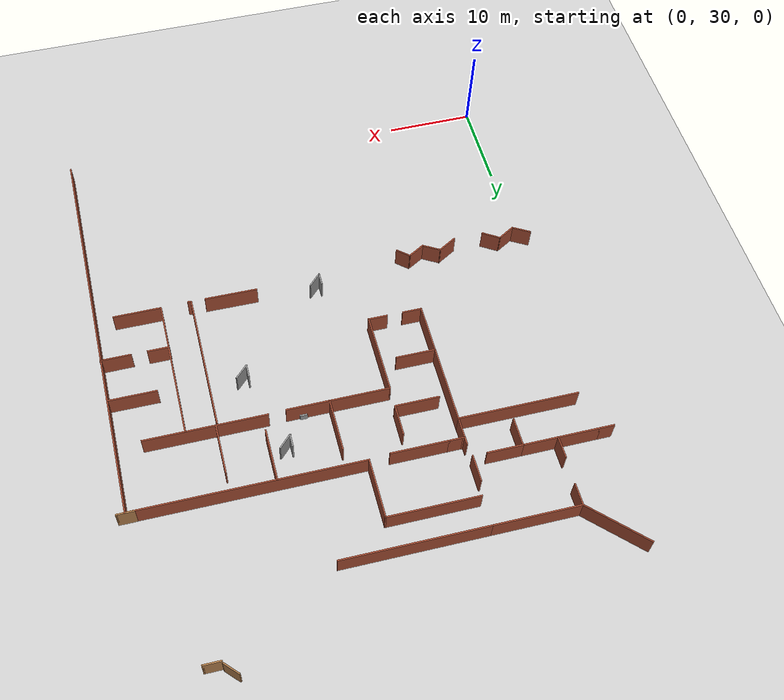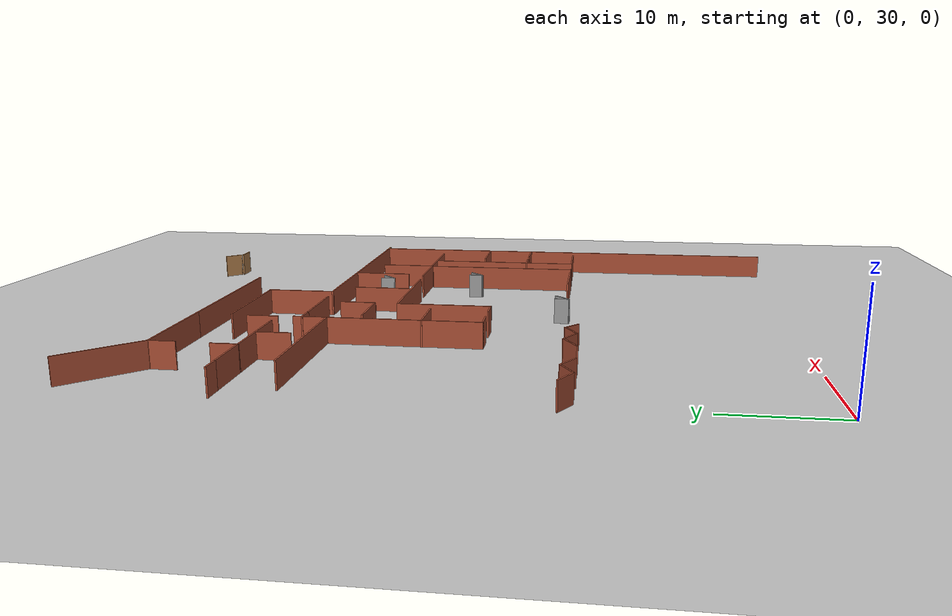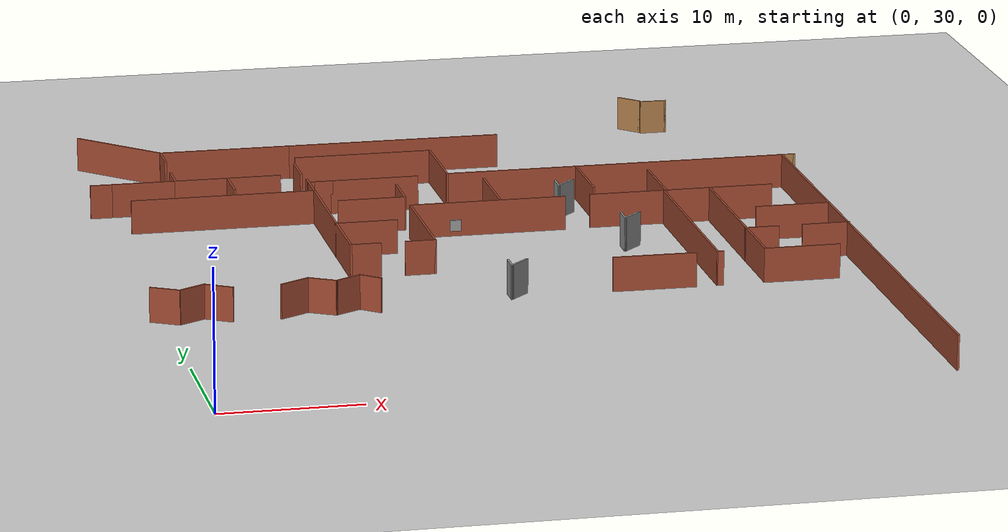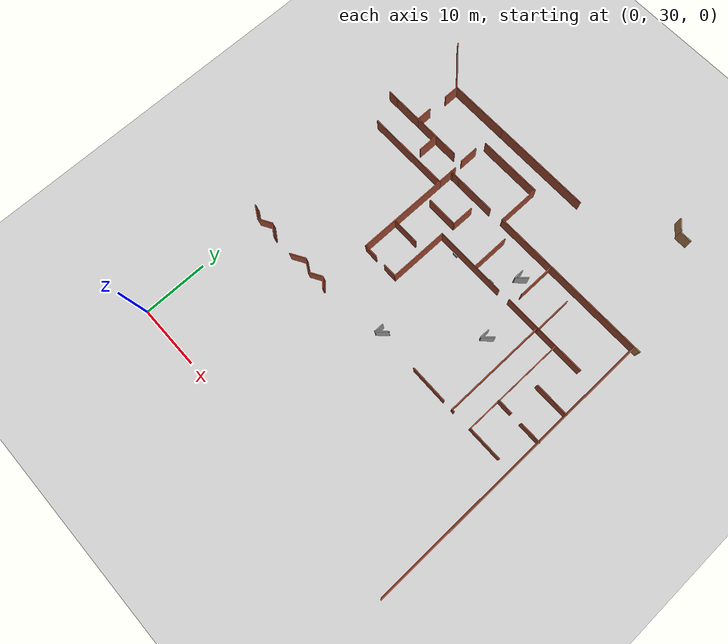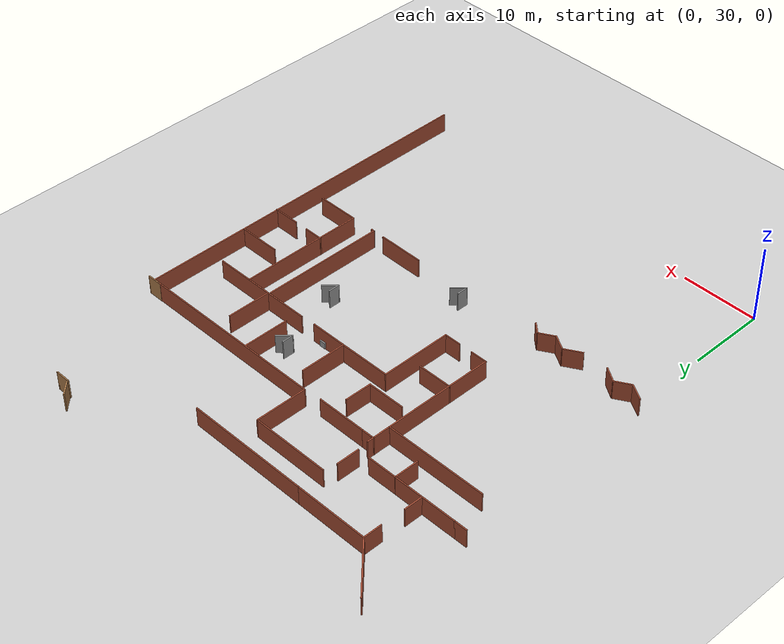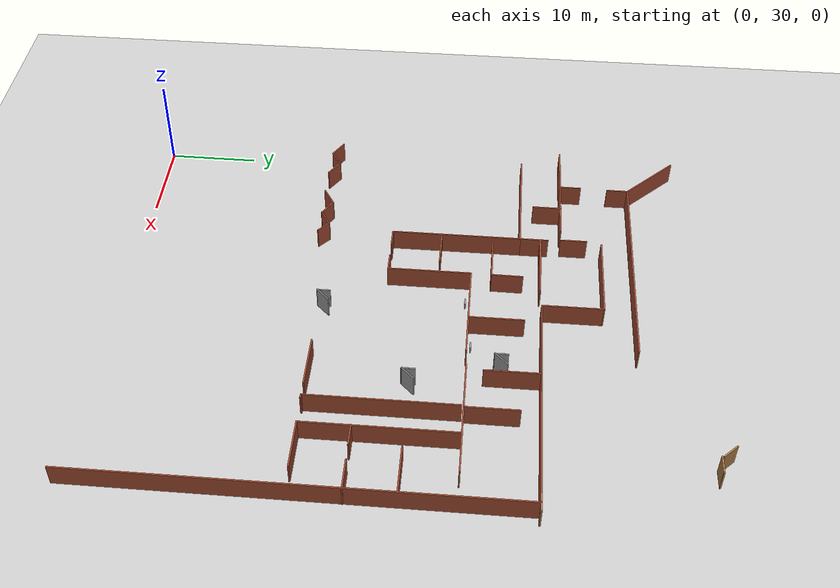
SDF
<sdf version="1.6">
 <world name="default">
  <model name="maze_rect_3">
   <pose>4e-06 -9.9e-05 0 0 -0 1.57001</pose>
   <link name="Wall_131">
    <collision name="Wall_131_Collision">
     <geometry><box><size>2.25 0.15 2.5</size></box></geometry>
     <pose>0 0 1.25 0 -0 0</pose>
    </collision>
    <visual name="Wall_131_Visual">
     <pose>0 0 1.25 0 -0 0</pose>
     <geometry><box><size>2.25 0.15 2.5</size></box></geometry>
     <material>
      <script><uri>file://media/materials/scripts/gazebo.material</uri><name>Gazebo/Bricks</name></script>
      <ambient>1 1 1 1</ambient>
     </material>
     <meta><layer>0</layer></meta>
    </visual>
    <pose>50.6727 0.113126 0 0 -0 -2.0944</pose>
   </link>
   <link name="Wall_132">
    <collision name="Wall_132_Collision">
     <geometry><box><size>2.25 0.15 2.5</size></box></geometry>
     <pose>0 0 1.25 0 -0 0</pose>
    </collision>
    <visual name="Wall_132_Visual">
     <pose>0 0 1.25 0 -0 0</pose>
     <geometry><box><size>2.25 0.15 2.5</size></box></geometry>
     <material>
      <script><uri>file://media/materials/scripts/gazebo.material</uri><name>Gazebo/Bricks</name></script>
      <ambient>1 1 1 1</ambient>
     </material>
     <meta><layer>0</layer></meta>
    </visual>
    <pose>50.6727 -1.79753 0 0 -0 -1.0472</pose>
   </link>
   <link name="Wall_133">
    <collision name="Wall_133_Collision">
     <geometry><box><size>2.2447 0.15 2.5</size></box></geometry>
     <pose>0 0 1.25 0 -0 0</pose>
    </collision>
    <visual name="Wall_133_Visual">
     <pose>0 0 1.25 0 -0 0</pose>
     <geometry><box><size>2.2447 0.15 2.5</size></box></geometry>
     <material>
      <script><uri>file://media/materials/scripts/gazebo.material</uri><name>Gazebo/Bricks</name></script>
      <ambient>1 1 1 1</ambient>
     </material>
     <meta><layer>0</layer></meta>
    </visual>
    <pose>50.6397 -3.59318 0 0 -0 -2.13267</pose>
   </link>
   <link name="Wall_136">
    <collision name="Wall_136_Collision">
     <geometry><box><size>2.5 0.15 2.5</size></box></geometry>
     <pose>0 0 1.25 0 -0 0</pose>
    </collision>
    <visual name="Wall_136_Visual">
     <pose>0 0 1.25 0 -0 0</pose>
     <geometry><box><size>2.5 0.15 2.5</size></box></geometry>
     <material>
      <script><uri>file://media/materials/scripts/gazebo.material</uri><name>Gazebo/Bricks</name></script>
      <ambient>1 1 1 1</ambient>
     </material>
     <meta><layer>0</layer></meta>
    </visual>
    <pose>50.6692 -8.93138 0 0 -0 -1.0472</pose>
   </link>
   <link name="Wall_137">
    <collision name="Wall_137_Collision">
     <geometry><box><size>2.25 0.15 2.5</size></box></geometry>
     <pose>0 0 1.25 0 -0 0</pose>
    </collision>
    <visual name="Wall_137_Visual">
     <pose>0 0 1.25 0 -0 0</pose>
     <geometry><box><size>2.25 0.15 2.5</size></box></geometry>
     <material>
      <script><uri>file://media/materials/scripts/gazebo.material</uri><name>Gazebo/Bricks</name></script>
      <ambient>1 1 1 1</ambient>
     </material>
     <meta><layer>0</layer></meta>
    </visual>
    <pose>50.7317 -10.8583 0 0 -0 -2.0944</pose>
   </link>
   <link name="Wall_138">
    <collision name="Wall_138_Collision">
     <geometry><box><size>2.25 0.15 2.5</size></box></geometry>
     <pose>0 0 1.25 0 -0 0</pose>
    </collision>
    <visual name="Wall_138_Visual">
     <pose>0 0 1.25 0 -0 0</pose>
     <geometry><box><size>2.25 0.15 2.5</size></box></geometry>
     <material>
      <script><uri>file://media/materials/scripts/gazebo.material</uri><name>Gazebo/Bricks</name></script>
      <ambient>1 1 1 1</ambient>
     </material>
     <meta><layer>0</layer></meta>
    </visual>
    <pose>50.7317 -12.6769 0 0 -0 -1.0472</pose>
   </link>
   <link name="Wall_139">
    <collision name="Wall_139_Collision">
     <geometry><box><size>1.81998 0.15 2.5</size></box></geometry>
     <pose>0 0 1.25 0 -0 0</pose>
    </collision>
    <visual name="Wall_139_Visual">
     <pose>0 0 1.25 0 -0 0</pose>
     <geometry><box><size>1.81998 0.15 2.5</size></box></geometry>
     <material>
      <script><uri>file://media/materials/scripts/gazebo.material</uri><name>Gazebo/Bricks</name></script>
      <ambient>1 1 1 1</ambient>
     </material>
     <meta><layer>0</layer></meta>
    </visual>
    <pose>50.7099 -14.2173 0 0 -0 -2.28481</pose>
   </link>
   <static>1</static>
  </model>
  <model name="map_palace_v2_model_1">
   <pose>0 60 0 0 -0 0</pose>
   <link name="Wall_208">
    <collision name="Wall_208_Collision">
     <geometry><box><size>1.75 0.15 2.5</size></box></geometry>
     <pose>0 0 1.25 0 -0 0</pose>
    </collision>
    <visual name="Wall_208_Visual">
     <pose>0 0 1.25 0 -0 0</pose>
     <geometry><box><size>1.75 0.15 2.5</size></box></geometry>
     <material>
      <script><uri>file://media/materials/scripts/gazebo.material</uri><name>Gazebo/Bricks</name></script>
      <ambient>1 1 1 1</ambient>
     </material>
     <meta><layer>0</layer></meta>
    </visual>
    <pose>-0.488058 17.5809 0 0 -0 0</pose>
   </link>
   <link name="Wall_209">
    <collision name="Wall_209_Collision">
     <geometry><box><size>4.75 0.15 2.5</size></box></geometry>
     <pose>0 0 1.25 0 -0 0</pose>
    </collision>
    <visual name="Wall_209_Visual">
     <pose>0 0 1.25 0 -0 0</pose>
     <geometry><box><size>4.75 0.15 2.5</size></box></geometry>
     <material>
      <script><uri>file://media/materials/scripts/gazebo.material</uri><name>Gazebo/Bricks</name></script>
      <ambient>1 1 1 1</ambient>
     </material>
     <meta><layer>0</layer></meta>
    </visual>
    <pose>2.61194 17.5809 0 0 -0 0</pose>
   </link>
   <link name="Wall_210">
    <collision name="Wall_210_Collision">
     <geometry><box><size>2.5 0.15 2.5</size></box></geometry>
     <pose>0 0 1.25 0 -0 0</pose>
    </collision>
    <visual name="Wall_210_Visual">
     <pose>0 0 1.25 0 -0 0</pose>
     <geometry><box><size>2.5 0.15 2.5</size></box></geometry>
     <material>
      <script><uri>file://media/materials/scripts/gazebo.material</uri><name>Gazebo/Bricks</name></script>
      <ambient>1 1 1 1</ambient>
     </material>
     <meta><layer>0</layer></meta>
    </visual>
    <pose>4.91194 18.7559 0 0 -0 1.5708</pose>
   </link>
   <link name="Wall_212">
    <collision name="Wall_212_Collision">
     <geometry><box><size>4 0.15 2.5</size></box></geometry>
     <pose>0 0 1.25 0 -0 0</pose>
    </collision>
    <visual name="Wall_212_Visual">
     <pose>0 0 1.25 0 -0 0</pose>
     <geometry><box><size>4 0.15 2.5</size></box></geometry>
     <material>
      <script><uri>file://media/materials/scripts/gazebo.material</uri><name>Gazebo/Bricks</name></script>
      <ambient>1 1 1 1</ambient>
     </material>
     <meta><layer>0</layer></meta>
    </visual>
    <pose>6.83694 17.5809 0 0 -0 0</pose>
   </link>
   <link name="Wall_213">
    <collision name="Wall_213_Collision">
     <geometry><box><size>3.25 0.15 2.5</size></box></geometry>
     <pose>0 0 1.25 0 -0 0</pose>
    </collision>
    <visual name="Wall_213_Visual">
     <pose>0 0 1.25 0 -0 0</pose>
     <geometry><box><size>3.25 0.15 2.5</size></box></geometry>
     <material>
      <script><uri>file://media/materials/scripts/gazebo.material</uri><name>Gazebo/Bricks</name></script>
      <ambient>1 1 1 1</ambient>
     </material>
     <meta><layer>0</layer></meta>
    </visual>
    <pose>8.76194 16.0309 0 0 -0 -1.5708</pose>
   </link>
   <link name="Wall_215">
    <collision name="Wall_215_Collision">
     <geometry><box><size>4 0.15 2.5</size></box></geometry>
     <pose>0 0 1.25 0 -0 0</pose>
    </collision>
    <visual name="Wall_215_Visual">
     <pose>0 0 1.25 0 -0 0</pose>
     <geometry><box><size>4 0.15 2.5</size></box></geometry>
     <material>
      <script><uri>file://media/materials/scripts/gazebo.material</uri><name>Gazebo/Bricks</name></script>
      <ambient>1 1 1 1</ambient>
     </material>
     <meta><layer>0</layer></meta>
    </visual>
    <pose>10.6869 17.5809 0 0 -0 0</pose>
   </link>
   <link name="Wall_217">
    <collision name="Wall_217_Collision">
     <geometry><box><size>3 0.15 2.5</size></box></geometry>
     <pose>0 0 1.25 0 -0 0</pose>
    </collision>
    <visual name="Wall_217_Visual">
     <pose>0 0 1.25 0 -0 0</pose>
     <geometry><box><size>3 0.15 2.5</size></box></geometry>
     <material>
      <script><uri>file://media/materials/scripts/gazebo.material</uri><name>Gazebo/Bricks</name></script>
      <ambient>1 1 1 1</ambient>
     </material>
     <meta><layer>0</layer></meta>
    </visual>
    <pose>14.2119 19.0059 0 0 -0 1.5708</pose>
   </link>
   <link name="Wall_221">
    <collision name="Wall_221_Collision">
     <geometry><box><size>3.25 0.15 2.5</size></box></geometry>
     <pose>0 0 1.25 0 -0 0</pose>
    </collision>
    <visual name="Wall_221_Visual">
     <pose>0 0 1.25 0 -0 0</pose>
     <geometry><box><size>3.25 0.15 2.5</size></box></geometry>
     <material>
      <script><uri>file://media/materials/scripts/gazebo.material</uri><name>Gazebo/Bricks</name></script>
      <ambient>1 1 1 1</ambient>
     </material>
     <meta><layer>0</layer></meta>
    </visual>
    <pose>14.3807 14.5475 0 0 -0 1.5708</pose>
   </link>
   <link name="Wall_223">
    <collision name="Wall_223_Collision">
     <geometry><box><size>0.5 0.15 2.5</size></box></geometry>
     <pose>0 0 1.25 0 -0 0</pose>
    </collision>
    <visual name="Wall_223_Visual">
     <pose>0 0 1.25 0 -0 0</pose>
     <geometry><box><size>0.5 0.15 2.5</size></box></geometry>
     <material>
      <script><uri>file://media/materials/scripts/gazebo.material</uri><name>Gazebo/Bricks</name></script>
      <ambient>1 1 1 1</ambient>
     </material>
     <meta><layer>0</layer></meta>
    </visual>
    <pose>14.5415 15.308 0 0 -0 0</pose>
   </link>
   <link name="Wall_224">
    <collision name="Wall_224_Collision">
     <geometry><box><size>1.5 0.15 2.5</size></box></geometry>
     <pose>0 0 1.25 0 -0 0</pose>
    </collision>
    <visual name="Wall_224_Visual">
     <pose>0 0 1.25 0 -0 0</pose>
     <geometry><box><size>1.5 0.15 2.5</size></box></geometry>
     <material>
      <script><uri>file://media/materials/scripts/gazebo.material</uri><name>Gazebo/Bricks</name></script>
      <ambient>1 1 1 1</ambient>
     </material>
     <meta><layer>0</layer></meta>
    </visual>
    <pose>15.3915 15.308 0 0 -0 0</pose>
   </link>
   <link name="Wall_225">
    <collision name="Wall_225_Collision">
     <geometry><box><size>6.5 0.15 2.5</size></box></geometry>
     <pose>0 0 1.25 0 -0 0</pose>
    </collision>
    <visual name="Wall_225_Visual">
     <pose>0 0 1.25 0 -0 0</pose>
     <geometry><box><size>6.5 0.15 2.5</size></box></geometry>
     <material>
      <script><uri>file://media/materials/scripts/gazebo.material</uri><name>Gazebo/Bricks</name></script>
      <ambient>1 1 1 1</ambient>
     </material>
     <meta><layer>0</layer></meta>
    </visual>
    <pose>19.2415 15.308 0 0 -0 0</pose>
   </link>
   <link name="Wall_229">
    <collision name="Wall_229_Collision">
     <geometry><box><size>5 0.15 2.5</size></box></geometry>
     <pose>0 0 1.25 0 -0 0</pose>
    </collision>
    <visual name="Wall_229_Visual">
     <pose>0 0 1.25 0 -0 0</pose>
     <geometry><box><size>5 0.15 2.5</size></box></geometry>
     <material>
      <script><uri>file://media/materials/scripts/gazebo.material</uri><name>Gazebo/Bricks</name></script>
      <ambient>1 1 1 1</ambient>
     </material>
     <meta><layer>0</layer></meta>
    </visual>
    <pose>18.0475 9.99625 0 0 -0 3.14159</pose>
   </link>
   <link name="Wall_231">
    <collision name="Wall_231_Collision">
     <geometry><box><size>3.52576 0.15 2.5</size></box></geometry>
     <pose>0 0 1.25 0 -0 0</pose>
    </collision>
    <visual name="Wall_231_Visual">
     <pose>0 0 1.25 0 -0 0</pose>
     <geometry><box><size>3.52576 0.15 2.5</size></box></geometry>
     <material>
      <script><uri>file://media/materials/scripts/gazebo.material</uri><name>Gazebo/Bricks</name></script>
      <ambient>1 1 1 1</ambient>
     </material>
     <meta><layer>0</layer></meta>
    </visual>
    <pose>20.49 11.684 0 0 -0 -1.58116</pose>
   </link>
   <link name="Wall_235">
    <collision name="Wall_235_Collision">
     <geometry><box><size>4.5 0.15 2.5</size></box></geometry>
     <pose>0 0 1.25 0 -0 0</pose>
    </collision>
    <visual name="Wall_235_Visual">
     <pose>0 0 1.25 0 -0 0</pose>
     <geometry><box><size>4.5 0.15 2.5</size></box></geometry>
     <material>
      <script><uri>file://media/materials/scripts/gazebo.material</uri><name>Gazebo/Bricks</name></script>
      <ambient>1 1 1 1</ambient>
     </material>
     <meta><layer>0</layer></meta>
    </visual>
    <pose>16.5435 4.20704 0 0 -0 0</pose>
   </link>
   <link name="Wall_240">
    <collision name="Wall_240_Collision">
     <geometry><box><size>2.5 0.15 2.5</size></box></geometry>
     <pose>0 0 1.25 0 -0 0</pose>
    </collision>
    <visual name="Wall_240_Visual">
     <pose>0 0 1.25 0 -0 0</pose>
     <geometry><box><size>2.5 0.15 2.5</size></box></geometry>
     <material>
      <script><uri>file://media/materials/scripts/gazebo.material</uri><name>Gazebo/Bricks</name></script>
      <ambient>1 1 1 1</ambient>
     </material>
     <meta><layer>0</layer></meta>
    </visual>
    <pose>5.03069 24.2725 0 0 -0 -1.5708</pose>
   </link>
   <link name="Wall_244">
    <collision name="Wall_244_Collision">
     <geometry><box><size>6 0.15 2.5</size></box></geometry>
     <pose>0 0 1.25 0 -0 0</pose>
    </collision>
    <visual name="Wall_244_Visual">
     <pose>0 0 1.25 0 -0 0</pose>
     <geometry><box><size>6 0.15 2.5</size></box></geometry>
     <material>
      <script><uri>file://media/materials/scripts/gazebo.material</uri><name>Gazebo/Bricks</name></script>
      <ambient>1 1 1 1</ambient>
     </material>
     <meta><layer>0</layer></meta>
    </visual>
    <pose>27.0679 10.7157 0 0 -0 1.5708</pose>
   </link>
   <link name="Wall_246">
    <collision name="Wall_246_Collision">
     <geometry><box><size>6 0.15 2.5</size></box></geometry>
     <pose>0 0 1.25 0 -0 0</pose>
    </collision>
    <visual name="Wall_246_Visual">
     <pose>0 0 1.25 0 -0 0</pose>
     <geometry><box><size>6 0.15 2.5</size></box></geometry>
     <material>
      <script><uri>file://media/materials/scripts/gazebo.material</uri><name>Gazebo/Bricks</name></script>
      <ambient>1 1 1 1</ambient>
     </material>
     <meta><layer>0</layer></meta>
    </visual>
    <pose>34.4057 12.5718 0 0 -0 -1.5708</pose>
   </link>
   <link name="Wall_249">
    <collision name="Wall_249_Collision">
     <geometry><box><size>5.75 0.15 2.5</size></box></geometry>
     <pose>0 0 1.25 0 -0 0</pose>
    </collision>
    <visual name="Wall_249_Visual">
     <pose>0 0 1.25 0 -0 0</pose>
     <geometry><box><size>5.75 0.15 2.5</size></box></geometry>
     <material>
      <script><uri>file://media/materials/scripts/gazebo.material</uri><name>Gazebo/Bricks</name></script>
      <ambient>1 1 1 1</ambient>
     </material>
     <meta><layer>0</layer></meta>
    </visual>
    <pose>39.3766 10.6453 0 0 -0 -1.5708</pose>
   </link>
   <link name="Wall_25">
    <collision name="Wall_25_Collision">
     <geometry><box><size>13.5 0.15 2.5</size></box></geometry>
     <pose>0 0 1.25 0 -0 0</pose>
    </collision>
    <visual name="Wall_25_Visual">
     <pose>0 0 1.25 0 -0 0</pose>
     <geometry><box><size>13.5 0.15 2.5</size></box></geometry>
     <material>
      <script><uri>file://media/materials/scripts/gazebo.material</uri><name>Gazebo/Bricks</name></script>
      <ambient>1 1 1 1</ambient>
     </material>
     <meta><layer>0</layer></meta>
    </visual>
    <pose>7.70569 12.9975 0 0 -0 0</pose>
   </link>
   <link name="Wall_250">
    <collision name="Wall_250_Collision">
     <geometry><box><size>5.75 0.15 2.5</size></box></geometry>
     <pose>0 0 1.25 0 -0 0</pose>
    </collision>
    <visual name="Wall_250_Visual">
     <pose>0 0 1.25 0 -0 0</pose>
     <geometry><box><size>5.75 0.15 2.5</size></box></geometry>
     <material>
      <script><uri>file://media/materials/scripts/gazebo.material</uri><name>Gazebo/Bricks</name></script>
      <ambient>1 1 1 1</ambient>
     </material>
     <meta><layer>0</layer></meta>
    </visual>
    <pose>36.5766 7.84533 0 0 -0 3.14159</pose>
   </link>
   <link name="Wall_252">
    <collision name="Wall_252_Collision">
     <geometry><box><size>8 0.15 2.5</size></box></geometry>
     <pose>0 0 1.25 0 -0 0</pose>
    </collision>
    <visual name="Wall_252_Visual">
     <pose>0 0 1.25 0 -0 0</pose>
     <geometry><box><size>8 0.15 2.5</size></box></geometry>
     <material>
      <script><uri>file://media/materials/scripts/gazebo.material</uri><name>Gazebo/Bricks</name></script>
      <ambient>1 1 1 1</ambient>
     </material>
     <meta><layer>0</layer></meta>
    </visual>
    <pose>43.3016 7.84533 0 0 -0 0</pose>
   </link>
   <link name="Wall_254">
    <collision name="Wall_254_Collision">
     <geometry><box><size>16.25 0.15 2.5</size></box></geometry>
     <pose>0 0 1.25 0 -0 0</pose>
    </collision>
    <visual name="Wall_254_Visual">
     <pose>0 0 1.25 0 -0 0</pose>
     <geometry><box><size>16.25 0.15 2.5</size></box></geometry>
     <material>
      <script><uri>file://media/materials/scripts/gazebo.material</uri><name>Gazebo/Bricks</name></script>
      <ambient>1 1 1 1</ambient>
     </material>
     <meta><layer>0</layer></meta>
    </visual>
    <pose>42.6348 -0.208459 0 0 -0 -1.5708</pose>
   </link>
   <link name="Wall_256">
    <collision name="Wall_256_Collision">
     <geometry><box><size>16.0526 0.15 2.5</size></box></geometry>
     <pose>0 0 1.25 0 -0 0</pose>
    </collision>
    <visual name="Wall_256_Visual">
     <pose>0 0 1.25 0 -0 0</pose>
     <geometry><box><size>16.0526 0.15 2.5</size></box></geometry>
     <material>
      <script><uri>file://media/materials/scripts/gazebo.material</uri><name>Gazebo/Bricks</name></script>
      <ambient>1 1 1 1</ambient>
     </material>
     <meta><layer>0</layer></meta>
    </visual>
    <pose>39.1948 -0.349759 0 0 -0 -1.5708</pose>
   </link>
   <link name="Wall_258">
    <collision name="Wall_258_Collision">
     <geometry><box><size>5.5 0.15 2.5</size></box></geometry>
     <pose>0 0 1.25 0 -0 0</pose>
    </collision>
    <visual name="Wall_258_Visual">
     <pose>0 0 1.25 0 -0 0</pose>
     <geometry><box><size>5.5 0.15 2.5</size></box></geometry>
     <material>
      <script><uri>file://media/materials/scripts/gazebo.material</uri><name>Gazebo/Bricks</name></script>
      <ambient>1 1 1 1</ambient>
     </material>
     <meta><layer>0</layer></meta>
    </visual>
    <pose>47.3998 2.24154 0 0 -0 3.14159</pose>
   </link>
   <link name="Wall_26">
    <collision name="Wall_26_Collision">
     <geometry><box><size>14.5 0.15 2.5</size></box></geometry>
     <pose>0 0 1.25 0 -0 0</pose>
    </collision>
    <visual name="Wall_26_Visual">
     <pose>0 0 1.25 0 -0 0</pose>
     <geometry><box><size>14.5 0.15 2.5</size></box></geometry>
     <material>
      <script><uri>file://media/materials/scripts/gazebo.material</uri><name>Gazebo/Bricks</name></script>
      <ambient>1 1 1 1</ambient>
     </material>
     <meta><layer>0</layer></meta>
    </visual>
    <pose>14.3807 5.82246 0 0 -0 -1.5708</pose>
   </link>
   <link name="Wall_264">
    <collision name="Wall_264_Collision">
     <geometry><box><size>2.5 0.15 2.5</size></box></geometry>
     <pose>0 0 1.25 0 -0 0</pose>
    </collision>
    <visual name="Wall_264_Visual">
     <pose>0 0 1.25 0 -0 0</pose>
     <geometry><box><size>2.5 0.15 2.5</size></box></geometry>
     <material>
      <script><uri>file://media/materials/scripts/gazebo.material</uri><name>Gazebo/Bricks</name></script>
      <ambient>1 1 1 1</ambient>
     </material>
     <meta><layer>0</layer></meta>
    </visual>
    <pose>43.7673 -2.92852 0 0 -0 0</pose>
   </link>
   <link name="Wall_266">
    <collision name="Wall_266_Collision">
     <geometry><box><size>3.5 0.15 2.5</size></box></geometry>
     <pose>0 0 1.25 0 -0 0</pose>
    </collision>
    <visual name="Wall_266_Visual">
     <pose>0 0 1.25 0 -0 0</pose>
     <geometry><box><size>3.5 0.15 2.5</size></box></geometry>
     <material>
      <script><uri>file://media/materials/scripts/gazebo.material</uri><name>Gazebo/Bricks</name></script>
      <ambient>1 1 1 1</ambient>
     </material>
     <meta><layer>0</layer></meta>
    </visual>
    <pose>48.4673 -2.92852 0 0 -0 0</pose>
   </link>
   <link name="Wall_27">
    <collision name="Wall_27_Collision">
     <geometry><box><size>2.25 0.15 2.5</size></box></geometry>
     <pose>0 0 1.25 0 -0 0</pose>
    </collision>
    <visual name="Wall_27_Visual">
     <pose>0 0 1.25 0 -0 0</pose>
     <geometry><box><size>2.25 0.15 2.5</size></box></geometry>
     <material>
      <script><uri>file://media/materials/scripts/gazebo.material</uri><name>Gazebo/Bricks</name></script>
      <ambient>1 1 1 1</ambient>
     </material>
     <meta><layer>0</layer></meta>
    </visual>
    <pose>15.4307 -1.35254 0 0 -0 0</pose>
   </link>
   <link name="Wall_29">
    <collision name="Wall_29_Collision">
     <geometry><box><size>2.25 0.15 2.5</size></box></geometry>
     <pose>0 0 1.25 0 -0 0</pose>
    </collision>
    <visual name="Wall_29_Visual">
     <pose>0 0 1.25 0 -0 0</pose>
     <geometry><box><size>2.25 0.15 2.5</size></box></geometry>
     <material>
      <script><uri>file://media/materials/scripts/gazebo.material</uri><name>Gazebo/Bricks</name></script>
      <ambient>1 1 1 1</ambient>
     </material>
     <meta><layer>0</layer></meta>
    </visual>
    <pose>19.3807 -1.35254 0 0 -0 0</pose>
   </link>
   <link name="Wall_296">
    <collision name="Wall_296_Collision">
     <geometry><box><size>0.513653 0.15 2.5</size></box></geometry>
     <pose>0 0 1.25 0 -0 0</pose>
    </collision>
    <visual name="Wall_296_Visual">
     <pose>0 0 1.25 0 -0 0</pose>
     <geometry><box><size>0.513653 0.15 2.5</size></box></geometry>
     <material>
      <script><uri>file://media/materials/scripts/gazebo.material</uri><name>Gazebo/Bricks</name></script>
      <ambient>1 1 1 1</ambient>
     </material>
     <meta><layer>0</layer></meta>
    </visual>
    <pose>39.3759 -8.31805 0 0 -0 3.04799</pose>
   </link>
   <link name="Wall_298">
    <collision name="Wall_298_Collision">
     <geometry><box><size>6 0.15 2.5</size></box></geometry>
     <pose>0 0 1.25 0 -0 0</pose>
    </collision>
    <visual name="Wall_298_Visual">
     <pose>0 0 1.25 0 -0 0</pose>
     <geometry><box><size>6 0.15 2.5</size></box></geometry>
     <material>
      <script><uri>file://media/materials/scripts/gazebo.material</uri><name>Gazebo/Bricks</name></script>
      <ambient>1 1 1 1</ambient>
     </material>
     <meta><layer>0</layer></meta>
    </visual>
    <pose>34.6698 -8.27476 0 0 -0 3.1326</pose>
   </link>
   <link name="Wall_30">
    <collision name="Wall_30_Collision">
     <geometry><box><size>9.25 0.15 2.5</size></box></geometry>
     <pose>0 0 1.25 0 -0 0</pose>
    </collision>
    <visual name="Wall_30_Visual">
     <pose>0 0 1.25 0 -0 0</pose>
     <geometry><box><size>9.25 0.15 2.5</size></box></geometry>
     <material>
      <script><uri>file://media/materials/scripts/gazebo.material</uri><name>Gazebo/Bricks</name></script>
      <ambient>1 1 1 1</ambient>
     </material>
     <meta><layer>0</layer></meta>
    </visual>
    <pose>20.4307 3.19746 0 0 -0 1.5708</pose>
   </link>
   <link name="Wall_31">
    <collision name="Wall_31_Collision">
     <geometry><box><size>11.5 0.15 2.5</size></box></geometry>
     <pose>0 0 1.25 0 -0 0</pose>
    </collision>
    <visual name="Wall_31_Visual">
     <pose>0 0 1.25 0 -0 0</pose>
     <geometry><box><size>11.5 0.15 2.5</size></box></geometry>
     <material>
      <script><uri>file://media/materials/scripts/gazebo.material</uri><name>Gazebo/Bricks</name></script>
      <ambient>1 1 1 1</ambient>
     </material>
     <meta><layer>0</layer></meta>
    </visual>
    <pose>26.1057 7.74746 0 0 -0 0</pose>
   </link>
   <link name="Wall_310">
    <collision name="Wall_310_Collision">
     <geometry><box><size>5.5 0.15 2.5</size></box></geometry>
     <pose>0 0 1.25 0 -0 0</pose>
    </collision>
    <visual name="Wall_310_Visual">
     <pose>0 0 1.25 0 -0 0</pose>
     <geometry><box><size>5.5 0.15 2.5</size></box></geometry>
     <material>
      <script><uri>file://media/materials/scripts/gazebo.material</uri><name>Gazebo/Bricks</name></script>
      <ambient>1 1 1 1</ambient>
     </material>
     <meta><layer>0</layer></meta>
    </visual>
    <pose>45.3098 -8.25846 0 0 -0 0</pose>
   </link>
   <link name="Wall_36">
    <collision name="Wall_36_Collision">
     <geometry><box><size>46.5 0.15 2.5</size></box></geometry>
     <pose>0 0 1.25 0 -0 0</pose>
    </collision>
    <visual name="Wall_36_Visual">
     <pose>0 0 1.25 0 -0 0</pose>
     <geometry><box><size>46.5 0.15 2.5</size></box></geometry>
     <material>
      <script><uri>file://media/materials/scripts/gazebo.material</uri><name>Gazebo/Bricks</name></script>
      <ambient>1 1 1 1</ambient>
     </material>
     <meta><layer>0</layer></meta>
    </visual>
    <pose>50.0807 -7.67754 0 0 -0 1.5708</pose>
   </link>
   <link name="Wall_37">
    <collision name="Wall_37_Collision">
     <geometry><box><size>25.5 0.15 2.5</size></box></geometry>
     <pose>0 0 1.25 0 -0 0</pose>
    </collision>
    <visual name="Wall_37_Visual">
     <pose>0 0 1.25 0 -0 0</pose>
     <geometry><box><size>25.5 0.15 2.5</size></box></geometry>
     <material>
      <script><uri>file://media/materials/scripts/gazebo.material</uri><name>Gazebo/Bricks</name></script>
      <ambient>1 1 1 1</ambient>
     </material>
     <meta><layer>0</layer></meta>
    </visual>
    <pose>37.4057 15.4975 0 0 -0 3.14159</pose>
   </link>
   <link name="Wall_38">
    <collision name="Wall_38_Collision">
     <geometry><box><size>6.75 0.15 2.5</size></box></geometry>
     <pose>0 0 1.25 0 -0 0</pose>
    </collision>
    <visual name="Wall_38_Visual">
     <pose>0 0 1.25 0 -0 0</pose>
     <geometry><box><size>6.75 0.15 2.5</size></box></geometry>
     <material>
      <script><uri>file://media/materials/scripts/gazebo.material</uri><name>Gazebo/Bricks</name></script>
      <ambient>1 1 1 1</ambient>
     </material>
     <meta><layer>0</layer></meta>
    </visual>
    <pose>24.7307 18.7975 0 0 -0 1.5708</pose>
   </link>
   <link name="Wall_39">
    <collision name="Wall_39_Collision">
     <geometry><box><size>10.25 0.15 2.5</size></box></geometry>
     <pose>0 0 1.25 0 -0 0</pose>
    </collision>
    <visual name="Wall_39_Visual">
     <pose>0 0 1.25 0 -0 0</pose>
     <geometry><box><size>10.25 0.15 2.5</size></box></geometry>
     <material>
      <script><uri>file://media/materials/scripts/gazebo.material</uri><name>Gazebo/Bricks</name></script>
      <ambient>1 1 1 1</ambient>
     </material>
     <meta><layer>0</layer></meta>
    </visual>
    <pose>19.6807 22.0975 0 0 -0 3.14159</pose>
   </link>
   <link name="Wall_41">
    <collision name="Wall_41_Collision">
     <geometry><box><size>9.75 0.15 2.5</size></box></geometry>
     <pose>0 0 1.25 0 -0 0</pose>
    </collision>
    <visual name="Wall_41_Visual">
     <pose>0 0 1.25 0 -0 0</pose>
     <geometry><box><size>9.75 0.15 2.5</size></box></geometry>
     <material>
      <script><uri>file://media/materials/scripts/gazebo.material</uri><name>Gazebo/Bricks</name></script>
      <ambient>1 1 1 1</ambient>
     </material>
     <meta><layer>0</layer></meta>
    </visual>
    <pose>9.83069 25.4475 0 0 -0 3.14159</pose>
   </link>
   <link name="Wall_42">
    <collision name="Wall_42_Collision">
     <geometry><box><size>7.75 0.15 2.5</size></box></geometry>
     <pose>0 0 1.25 0 -0 0</pose>
    </collision>
    <visual name="Wall_42_Visual">
     <pose>0 0 1.25 0 -0 0</pose>
     <geometry><box><size>7.75 0.15 2.5</size></box></geometry>
     <material>
      <script><uri>file://media/materials/scripts/gazebo.material</uri><name>Gazebo/Bricks</name></script>
      <ambient>1 1 1 1</ambient>
     </material>
     <meta><layer>0</layer></meta>
    </visual>
    <pose>2.34368 28.1345 0 0 -0 2.35619</pose>
   </link>
   <link name="Wall_47">
    <collision name="Wall_47_Collision">
     <geometry><box><size>16 0.15 2.5</size></box></geometry>
     <pose>0 0 1.25 0 -0 0</pose>
    </collision>
    <visual name="Wall_47_Visual">
     <pose>0 0 1.25 0 -0 0</pose>
     <geometry><box><size>16 0.15 2.5</size></box></geometry>
     <material>
      <script><uri>file://media/materials/scripts/gazebo.material</uri><name>Gazebo/Bricks</name></script>
      <ambient>1 1 1 1</ambient>
     </material>
     <meta><layer>0</layer></meta>
    </visual>
    <pose>22.5557 25.4475 0 0 -0 0</pose>
   </link>
   <link name="Window_8">
    <collision name="Window_8_Collision">
     <geometry><box><size>0.8 0.17 0.8</size></box></geometry>
     <pose>0 0 0.4 0 -0 0</pose>
    </collision>
    <visual name="Window_8_Visual">
     <pose>0 0 0.4 0 -0 0</pose>
     <geometry><box><size>0.8 0.17 0.8</size></box></geometry>
     <material>
      <script><uri>file://media/materials/scripts/gazebo.material</uri><name>Gazebo/Grey</name></script>
     </material>
    </visual>
    <pose>23.6652 7.30334 0.5 0 -0 0</pose>
   </link>
   <link name="Window_9">
    <collision name="Window_9_Collision">
     <geometry><box><size>0.8 0.17 0.8</size></box></geometry>
     <pose>0 0 0.4 0 -0 0</pose>
    </collision>
    <visual name="Window_9_Visual">
     <pose>0 0 0.4 0 -0 0</pose>
     <geometry><box><size>0.8 0.17 0.8</size></box></geometry>
     <material>
      <script><uri>file://media/materials/scripts/gazebo.material</uri><name>Gazebo/Grey</name></script>
     </material>
    </visual>
    <pose>30.0132 8.14974 0.5 0 -0 0</pose>
   </link>
   <static>1</static>
  </model>
  <model name="v_wall_2">
   <pose>35.4786 62.0034 0 0 -0 0</pose>
   <link name="Wall_3">
    <collision name="Wall_3_Collision">
     <geometry><box><size>2 0.15 2.5</size></box></geometry>
     <pose>0 0 1.25 0 -0 0</pose>
    </collision>
    <visual name="Wall_3_Visual">
     <pose>0 0 1.25 0 -0 0</pose>
     <geometry><box><size>2 0.15 2.5</size></box></geometry>
     <material>
      <script><uri>file://media/materials/scripts/gazebo.material</uri><name>Gazebo/Grey</name></script>
      <ambient>1 1 1 1</ambient>
     </material>
     <meta><layer>0</layer></meta>
    </visual>
    <pose>0 -0.005393 0 0 -0 0.785398</pose>
   </link>
   <link name="Wall_5">
    <collision name="Wall_5_Collision">
     <geometry><box><size>1.5 0.15 2.5</size></box></geometry>
     <pose>0 0 1.25 0 -0 0</pose>
    </collision>
    <visual name="Wall_5_Visual">
     <pose>0 0 1.25 0 -0 0</pose>
     <geometry><box><size>1.5 0.15 2.5</size></box></geometry>
     <material>
      <script><uri>file://media/materials/scripts/gazebo.material</uri><name>Gazebo/Grey</name></script>
      <ambient>1 1 1 1</ambient>
     </material>
     <meta><layer>0</layer></meta>
    </visual>
    <pose>-0.654074 0.015533 0 0 -0 1.5708</pose>
   </link>
   <static>1</static>
  </model>
  <model name="v_wall_2_0">
   <pose>32.7047 71.3837 0 0 -0 0</pose>
   <link name="Wall_3">
    <collision name="Wall_3_Collision">
     <geometry><box><size>2 0.15 2.5</size></box></geometry>
     <pose>0 0 1.25 0 -0 0</pose>
    </collision>
    <visual name="Wall_3_Visual">
     <pose>0 0 1.25 0 -0 0</pose>
     <geometry><box><size>2 0.15 2.5</size></box></geometry>
     <material>
      <script><uri>file://media/materials/scripts/gazebo.material</uri><name>Gazebo/Grey</name></script>
      <ambient>1 1 1 1</ambient>
     </material>
     <meta><layer>0</layer></meta>
    </visual>
    <pose>0 -0.005393 0 0 -0 0.785398</pose>
   </link>
   <link name="Wall_5">
    <collision name="Wall_5_Collision">
     <geometry><box><size>1.5 0.15 2.5</size></box></geometry>
     <pose>0 0 1.25 0 -0 0</pose>
    </collision>
    <visual name="Wall_5_Visual">
     <pose>0 0 1.25 0 -0 0</pose>
     <geometry><box><size>1.5 0.15 2.5</size></box></geometry>
     <material>
      <script><uri>file://media/materials/scripts/gazebo.material</uri><name>Gazebo/Grey</name></script>
      <ambient>1 1 1 1</ambient>
     </material>
     <meta><layer>0</layer></meta>
    </visual>
    <pose>-0.654074 0.015533 0 0 -0 1.5708</pose>
   </link>
   <static>1</static>
  </model>
  <model name="v_wall_2_4">
   <pose>25.0534 52.003 0 0 -0 0</pose>
   <link name="Wall_3">
    <collision name="Wall_3_Collision">
     <geometry><box><size>2 0.15 2.5</size></box></geometry>
     <pose>0 0 1.25 0 -0 0</pose>
    </collision>
    <visual name="Wall_3_Visual">
     <pose>0 0 1.25 0 -0 0</pose>
     <geometry><box><size>2 0.15 2.5</size></box></geometry>
     <material>
      <script><uri>file://media/materials/scripts/gazebo.material</uri><name>Gazebo/Grey</name></script>
      <ambient>1 1 1 1</ambient>
     </material>
     <meta><layer>0</layer></meta>
    </visual>
    <pose>0 -0.005393 0 0 -0 0.785398</pose>
   </link>
   <link name="Wall_5">
    <collision name="Wall_5_Collision">
     <geometry><box><size>1.5 0.15 2.5</size></box></geometry>
     <pose>0 0 1.25 0 -0 0</pose>
    </collision>
    <visual name="Wall_5_Visual">
     <pose>0 0 1.25 0 -0 0</pose>
     <geometry><box><size>1.5 0.15 2.5</size></box></geometry>
     <material>
      <script><uri>file://media/materials/scripts/gazebo.material</uri><name>Gazebo/Grey</name></script>
      <ambient>1 1 1 1</ambient>
     </material>
     <meta><layer>0</layer></meta>
    </visual>
    <pose>-0.654074 0.015533 0 0 -0 1.5708</pose>
   </link>
   <static>1</static>
  </model>
  <model name="wall_13">
   <pose>42.6458 93.449 0 0 0 -0.803242</pose>
   <link name="Wall_2">
    <collision name="Wall_2_Collision">
     <geometry><box><size>2 0.15 2.5</size></box></geometry>
     <pose>0 0 1.25 0 -0 0</pose>
    </collision>
    <visual name="Wall_2_Visual">
     <pose>0 0 1.25 0 -0 0</pose>
     <geometry><box><size>2 0.15 2.5</size></box></geometry>
     <material>
      <script><uri>file://media/materials/scripts/gazebo.material</uri><name>Gazebo/Wood</name></script>
      <ambient>1 1 1 1</ambient>
     </material>
     <meta><layer>0</layer></meta>
    </visual>
    <pose>-0.005 -0 0 0 -0 0</pose>
   </link>
   <link name="Wall_3">
    <collision name="Wall_3_Collision">
     <geometry><box><size>0.16 0.15 2.5</size></box></geometry>
     <pose>0 0 1.25 0 -0 0</pose>
    </collision>
    <visual name="Wall_3_Visual">
     <pose>0 0 1.25 0 -0 0</pose>
     <geometry><box><size>0.16 0.15 2.5</size></box></geometry>
     <material>
      <script><uri>file://media/materials/scripts/gazebo.material</uri><name>Gazebo/Wood</name></script>
      <ambient>1 1 1 1</ambient>
     </material>
     <meta><layer>0</layer></meta>
    </visual>
    <pose>0.925 0 0 0 -0 0</pose>
   </link>
   <static>1</static>
  </model>
  <model name="wall_14">
   <pose>44.3034 92.551 0 0 -0 0</pose>
   <link name="Wall_2">
    <collision name="Wall_2_Collision">
     <geometry><box><size>2 0.15 2.5</size></box></geometry>
     <pose>0 0 1.25 0 -0 0</pose>
    </collision>
    <visual name="Wall_2_Visual">
     <pose>0 0 1.25 0 -0 0</pose>
     <geometry><box><size>2 0.15 2.5</size></box></geometry>
     <material>
      <script><uri>file://media/materials/scripts/gazebo.material</uri><name>Gazebo/Wood</name></script>
      <ambient>1 1 1 1</ambient>
     </material>
     <meta><layer>0</layer></meta>
    </visual>
    <pose>-0.005 -0 0 0 -0 0</pose>
   </link>
   <link name="Wall_3">
    <collision name="Wall_3_Collision">
     <geometry><box><size>0.16 0.15 2.5</size></box></geometry>
     <pose>0 0 1.25 0 -0 0</pose>
    </collision>
    <visual name="Wall_3_Visual">
     <pose>0 0 1.25 0 -0 0</pose>
     <geometry><box><size>0.16 0.15 2.5</size></box></geometry>
     <material>
      <script><uri>file://media/materials/scripts/gazebo.material</uri><name>Gazebo/Wood</name></script>
      <ambient>1 1 1 1</ambient>
     </material>
     <meta><layer>0</layer></meta>
    </visual>
    <pose>0.925 0 0 0 -0 0</pose>
   </link>
   <static>1</static>
  </model>
  <model name="wall_21">
   <pose>50.05 75.5165 0 0 -0 0</pose>
   <link name="Wall_2">
    <collision name="Wall_2_Collision">
     <geometry><box><size>2 0.15 2.5</size></box></geometry>
     <pose>0 0 1.25 0 -0 0</pose>
    </collision>
    <visual name="Wall_2_Visual">
     <pose>0 0 1.25 0 -0 0</pose>
     <geometry><box><size>2 0.15 2.5</size></box></geometry>
     <material>
      <script><uri>file://media/materials/scripts/gazebo.material</uri><name>Gazebo/Wood</name></script>
      <ambient>1 1 1 1</ambient>
     </material>
     <meta><layer>0</layer></meta>
    </visual>
    <pose>-0.005 -0 0 0 -0 0</pose>
   </link>
   <link name="Wall_3">
    <collision name="Wall_3_Collision">
     <geometry><box><size>0.16 0.15 2.5</size></box></geometry>
     <pose>0 0 1.25 0 -0 0</pose>
    </collision>
    <visual name="Wall_3_Visual">
     <pose>0 0 1.25 0 -0 0</pose>
     <geometry><box><size>0.16 0.15 2.5</size></box></geometry>
     <material>
      <script><uri>file://media/materials/scripts/gazebo.material</uri><name>Gazebo/Wood</name></script>
      <ambient>1 1 1 1</ambient>
     </material>
     <meta><layer>0</layer></meta>
    </visual>
    <pose>0.925 0 0 0 -0 0</pose>
   </link>
   <static>1</static>
  </model>
  <model name="ground_plane">
   <static>1</static>
   <link name="link">
    <collision name="collision">
     <geometry><plane><normal>0 0 1</normal><size>100 100</size></plane></geometry>
     <surface>
      <contact><collide_bitmask>65535</collide_bitmask></contact>
      <friction><ode><mu>100</mu><mu2>50</mu2></ode></friction>
     </surface>
    </collision>
    <visual name="visual">
     <cast_shadows>0</cast_shadows>
     <geometry><plane><normal>0 0 1</normal><size>100 100</size></plane></geometry>
     <material>
      <script><uri>file://media/materials/scripts/gazebo.material</uri><name>Gazebo/Grey</name></script>
     </material>
    </visual>
   </link>
   <pose>9.31394 52.073 0 0 -0 0</pose>
  </model>
 </world>
</sdf>
